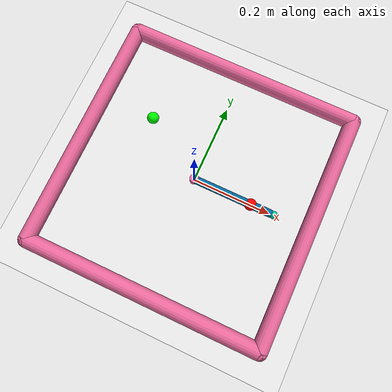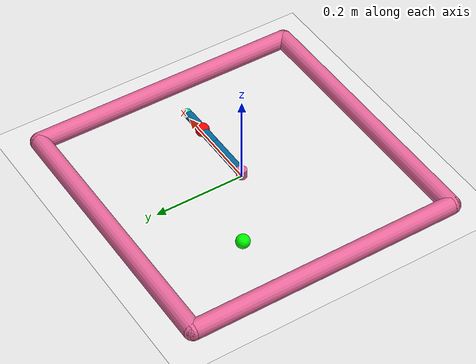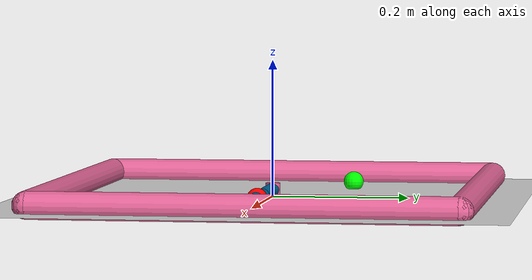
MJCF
<mujoco model="reacher">
  <compiler angle="radian" inertiafromgeom="true"/>
  <default>
    <joint armature="1" damping="1" limited="true"/>
    <geom contype="0" friction="1 0.1 0.1" rgba="0.7 0.7 0 1"/>
  </default>
  <option gravity="0 0 -9.81" integrator="RK4" timestep="0.01"/>
  <worldbody>
    <!-- Arena -->
    <geom type="plane" size="1 1 10" rgba="0.9 0.9 0.9 1" pos="0 0 0"/>
    <geom fromto="-.3 -.3 .01 .3 -.3 .01" name="sideS" rgba="0.9 0.4 0.6 1" size=".02" type="capsule"/>
    <geom fromto=" .3 -.3 .01 .3  .3 .01" name="sideE" rgba="0.9 0.4 0.6 1" size=".02" type="capsule"/>
    <geom fromto="-.3  .3 .01 .3  .3 .01" name="sideN" rgba="0.9 0.4 0.6 1" size=".02" type="capsule"/>
    <geom fromto="-.3 -.3 .01 -.3 .3 .01" name="sideW" rgba="0.9 0.4 0.6 1" size=".02" type="capsule"/>

    <!-- Arm -->
    <geom fromto="0 0 0 0 0 0.02" name="root" rgba="0.9 0.4 0.6 1" size=".011" type="cylinder"/>
    <body name="body0" pos="0 0 0.01">
      <geom fromto="0 0 0 0.1 0 0" name="link0" rgba="0.0 0.4 0.6 1" size=".01" type="capsule"/>
      <joint name="joint0" type="hinge" axis="0 0 1" pos="0 0 0" limited="false"/>
      <body name="body1" pos="0.1 0 0">
        <joint name="joint1" type="hinge" axis="0 0 1" pos="0 0 0" range="-3.0 3.0" limited="true"/>
        <geom fromto="0 0 0 0.1 0 0" name="link1" rgba="0.0 0.4 0.6 1" size=".01" type="capsule"/>
        <body name="fingertip" pos="0.11 0 0">
          <geom name="fingertip_geom" type="sphere" pos="0 0 0" size=".01" rgba="0.0 0.8 0.6 1" contype="0"/>
          <site name="fingertip" pos="0 0 0" size="0.005" rgba="0 1 0 1"/>
        </body>
      </body>
    </body>

    <!-- Movable Red Ball Object -->
    <body name="object_body" pos="0.15 0 0.01">
      <geom name="object_geom" type="sphere" pos="0 0 0" size="0.015" mass="0.00001" rgba="1 0 0 1" contype="1"/>
      <site name="object" pos="0 0 0" size="0.005" rgba="1 0 0 1"/>
    </body>

    <!-- Fixed Target: 定义为一个固定 body，不参与物理运动 -->
    <body name="target_body" pos="-0.16 0.1 0.01">
      <geom name="target_geom" type="sphere" pos="0 0 0" size="0.015" mass="0.00001" rgba="0 1 0 1" contype="0"/>
      <site name="target" pos="0 0 0" size="0.005" rgba="0 1 0 1"/>
    </body>

  </worldbody>

  <actuator>
    <motor joint="joint0" ctrllimited="true" ctrlrange="-1.0 1.0" gear="200.0"/>
    <motor joint="joint1" ctrllimited="true" ctrlrange="-1.0 1.0" gear="200.0"/>
  </actuator>
</mujoco>
